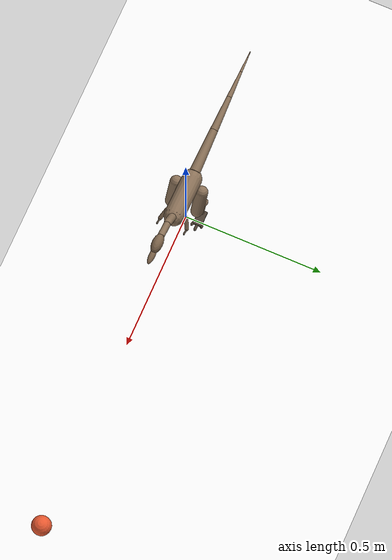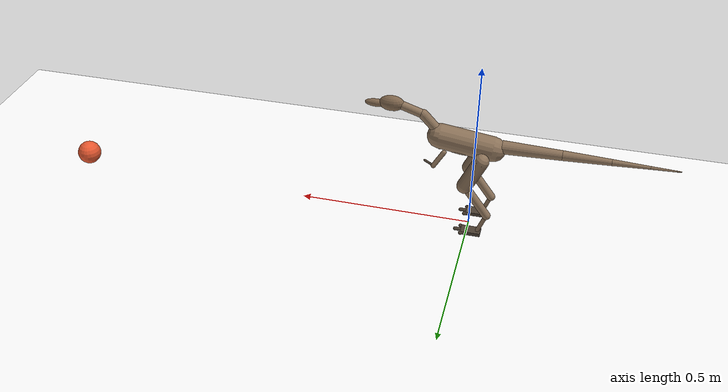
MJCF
<?xml version='1.0' encoding='utf-8'?>
<mujoco model="compsognathus_biological_v2">
  <compiler angle="radian" autolimits="true" />
  <option timestep="0.002" gravity="0 0 -9.81" integrator="implicitfast" iterations="100" cone="elliptic" />
  <default>
    <joint damping="0.01" armature="0.00005" limited="true" />
    <geom contype="1" conaffinity="3" friction="0.8 0.005 0.0001" condim="3" solref="0.006 1" solimp="0.95 0.99 0.001" margin=".00005" material="body_mat" />
  </default>
  <asset>
    <texture type="skybox" builtin="gradient" rgb1=".12 .18 .23" rgb2=".25 .34 .40" width="128" height="128" />
    <texture name="ground_grid" type="2d" builtin="checker" rgb1="0.15 0.19 0.23" rgb2="0.19 0.23 0.27" width="256" height="256" />
    <material name="ground_mat" texture="ground_grid" texrepeat="10 10" texuniform="true" />
    <material name="body_mat" rgba=".55 .45 .35 1" specular=".15" shininess=".12" />
    <material name="belly_mat" rgba=".60 .50 .40 1" specular=".15" shininess=".12" />
    <material name="head_mat" rgba=".50 .40 .30 1" specular=".15" shininess=".12" />
    <material name="claw_mat" rgba=".30 .25 .20 1" specular=".15" shininess=".12" />
    <material name="tooth_mat" rgba=".90 .88 .80 1" specular=".15" shininess=".12" />
    <material name="eye_mat" rgba=".035 .03 .025 1" specular=".15" shininess=".12" />
    <material name="frame_mat" rgba=".35 .38 .40 1" specular=".15" shininess=".12" />
    <material name="servo_mat" rgba=".13 .15 .17 1" specular=".15" shininess=".12" />
    <material name="electronics_mat" rgba=".12 .30 .23 1" specular=".15" shininess=".12" />
    <material name="lens_mat" rgba=".06 .13 .19 1" specular=".15" shininess=".12" />
    <material name="sole_mat" rgba=".16 .17 .18 1" specular=".15" shininess=".12" />
    <mesh name="tail_1_taper" vertex="0.012 0.019 0 0.012 0.0180700738096 0.00587132289312 0.012 0.0153713228931 0.0111679197936 0.012 0.0111679197936 0.0153713228931 0.012 0.00587132289312 0.0180700738096 0.012 1.16341445919e-18 0.019 0.012 -0.00587132289312 0.0180700738096 0.012 -0.0111679197936 0.0153713228931 0.012 -0.0153713228931 0.0111679197936 0.012 -0.0180700738096 0.00587132289312 0.012 -0.019 2.32682891838e-18 0.012 -0.0180700738096 -0.00587132289312 0.012 -0.0153713228931 -0.0111679197936 0.012 -0.0111679197936 -0.0153713228931 0.012 -0.00587132289312 -0.0180700738096 0.012 -3.49024337757e-18 -0.019 0.012 0.00587132289312 -0.0180700738096 0.012 0.0111679197936 -0.0153713228931 0.012 0.0153713228931 -0.0111679197936 0.012 0.0180700738096 -0.00587132289312 -0.15 0.014 0 -0.15 0.0133147912281 0.00432623792125 -0.15 0.0113262379212 0.00822899353209 -0.15 0.00822899353209 0.0113262379212 -0.15 0.00432623792125 0.0133147912281 -0.15 8.57252759403e-19 0.014 -0.15 -0.00432623792125 0.0133147912281 -0.15 -0.00822899353209 0.0113262379212 -0.15 -0.0113262379212 0.00822899353209 -0.15 -0.0133147912281 0.00432623792125 -0.15 -0.014 1.71450551881e-18 -0.15 -0.0133147912281 -0.00432623792125 -0.15 -0.0113262379212 -0.00822899353209 -0.15 -0.00822899353209 -0.0113262379212 -0.15 -0.00432623792125 -0.0133147912281 -0.15 -2.57175827821e-18 -0.014 -0.15 0.00432623792125 -0.0133147912281 -0.15 0.00822899353209 -0.0113262379212 -0.15 0.0113262379212 -0.00822899353209 -0.15 0.0133147912281 -0.00432623792125" face="0 21 1 0 20 21 1 22 2 1 21 22 2 23 3 2 22 23 3 24 4 3 23 24 4 25 5 4 24 25 5 26 6 5 25 26 6 27 7 6 26 27 7 28 8 7 27 28 8 29 9 8 28 29 9 30 10 9 29 30 10 31 11 10 30 31 11 32 12 11 31 32 12 33 13 12 32 33 13 34 14 13 33 34 14 35 15 14 34 35 15 36 16 15 35 36 16 37 17 16 36 37 17 38 18 17 37 38 18 39 19 18 38 39 19 20 0 19 39 20 0 1 2 20 22 21 0 2 3 20 23 22 0 3 4 20 24 23 0 4 5 20 25 24 0 5 6 20 26 25 0 6 7 20 27 26 0 7 8 20 28 27 0 8 9 20 29 28 0 9 10 20 30 29 0 10 11 20 31 30 0 11 12 20 32 31 0 12 13 20 33 32 0 13 14 20 34 33 0 14 15 20 35 34 0 15 16 20 36 35 0 16 17 20 37 36 0 17 18 20 38 37 0 18 19 20 39 38" />
    <mesh name="tail_2_taper" vertex="0 0.014 0 0 0.0133147912281 0.00432623792125 0 0.0113262379212 0.00822899353209 0 0.00822899353209 0.0113262379212 0 0.00432623792125 0.0133147912281 0 8.57252759403e-19 0.014 0 -0.00432623792125 0.0133147912281 0 -0.00822899353209 0.0113262379212 0 -0.0113262379212 0.00822899353209 0 -0.0133147912281 0.00432623792125 0 -0.014 1.71450551881e-18 0 -0.0133147912281 -0.00432623792125 0 -0.0113262379212 -0.00822899353209 0 -0.00822899353209 -0.0113262379212 0 -0.00432623792125 -0.0133147912281 0 -2.57175827821e-18 -0.014 0 0.00432623792125 -0.0133147912281 0 0.00822899353209 -0.0113262379212 0 0.0113262379212 -0.00822899353209 0 0.0133147912281 -0.00432623792125 -0.13 0.009 0 -0.13 0.00855950864666 0.00278115294937 -0.13 0.00728115294937 0.00529006727063 -0.13 0.00529006727063 0.00728115294937 -0.13 0.00278115294937 0.00855950864666 -0.13 5.51091059616e-19 0.009 -0.13 -0.00278115294937 0.00855950864666 -0.13 -0.00529006727063 0.00728115294937 -0.13 -0.00728115294937 0.00529006727063 -0.13 -0.00855950864666 0.00278115294937 -0.13 -0.009 1.10218211923e-18 -0.13 -0.00855950864666 -0.00278115294937 -0.13 -0.00728115294937 -0.00529006727063 -0.13 -0.00529006727063 -0.00728115294937 -0.13 -0.00278115294937 -0.00855950864666 -0.13 -1.65327317885e-18 -0.009 -0.13 0.00278115294937 -0.00855950864666 -0.13 0.00529006727063 -0.00728115294937 -0.13 0.00728115294937 -0.00529006727063 -0.13 0.00855950864666 -0.00278115294937" face="0 21 1 0 20 21 1 22 2 1 21 22 2 23 3 2 22 23 3 24 4 3 23 24 4 25 5 4 24 25 5 26 6 5 25 26 6 27 7 6 26 27 7 28 8 7 27 28 8 29 9 8 28 29 9 30 10 9 29 30 10 31 11 10 30 31 11 32 12 11 31 32 12 33 13 12 32 33 13 34 14 13 33 34 14 35 15 14 34 35 15 36 16 15 35 36 16 37 17 16 36 37 17 38 18 17 37 38 18 39 19 18 38 39 19 20 0 19 39 20 0 1 2 20 22 21 0 2 3 20 23 22 0 3 4 20 24 23 0 4 5 20 25 24 0 5 6 20 26 25 0 6 7 20 27 26 0 7 8 20 28 27 0 8 9 20 29 28 0 9 10 20 30 29 0 10 11 20 31 30 0 11 12 20 32 31 0 12 13 20 33 32 0 13 14 20 34 33 0 14 15 20 35 34 0 15 16 20 36 35 0 16 17 20 37 36 0 17 18 20 38 37 0 18 19 20 39 38" />
    <mesh name="tail_3_taper" vertex="0 0.009 0 0 0.00855950864666 0.00278115294937 0 0.00728115294937 0.00529006727063 0 0.00529006727063 0.00728115294937 0 0.00278115294937 0.00855950864666 0 5.51091059616e-19 0.009 0 -0.00278115294937 0.00855950864666 0 -0.00529006727063 0.00728115294937 0 -0.00728115294937 0.00529006727063 0 -0.00855950864666 0.00278115294937 0 -0.009 1.10218211923e-18 0 -0.00855950864666 -0.00278115294937 0 -0.00728115294937 -0.00529006727063 0 -0.00529006727063 -0.00728115294937 0 -0.00278115294937 -0.00855950864666 0 -1.65327317885e-18 -0.009 0 0.00278115294937 -0.00855950864666 0 0.00529006727063 -0.00728115294937 0 0.00728115294937 -0.00529006727063 0 0.00855950864666 -0.00278115294937 -0.1 0.0045 0 -0.1 0.00427975432333 0.00139057647469 -0.1 0.00364057647469 0.00264503363532 -0.1 0.00264503363532 0.00364057647469 -0.1 0.00139057647469 0.00427975432333 -0.1 2.75545529808e-19 0.0045 -0.1 -0.00139057647469 0.00427975432333 -0.1 -0.00264503363532 0.00364057647469 -0.1 -0.00364057647469 0.00264503363532 -0.1 -0.00427975432333 0.00139057647469 -0.1 -0.0045 5.51091059616e-19 -0.1 -0.00427975432333 -0.00139057647469 -0.1 -0.00364057647469 -0.00264503363532 -0.1 -0.00264503363532 -0.00364057647469 -0.1 -0.00139057647469 -0.00427975432333 -0.1 -8.26636589424e-19 -0.0045 -0.1 0.00139057647469 -0.00427975432333 -0.1 0.00264503363532 -0.00364057647469 -0.1 0.00364057647469 -0.00264503363532 -0.1 0.00427975432333 -0.00139057647469" face="0 21 1 0 20 21 1 22 2 1 21 22 2 23 3 2 22 23 3 24 4 3 23 24 4 25 5 4 24 25 5 26 6 5 25 26 6 27 7 6 26 27 7 28 8 7 27 28 8 29 9 8 28 29 9 30 10 9 29 30 10 31 11 10 30 31 11 32 12 11 31 32 12 33 13 12 32 33 13 34 14 13 33 34 14 35 15 14 34 35 15 36 16 15 35 36 16 37 17 16 36 37 17 38 18 17 37 38 18 39 19 18 38 39 19 20 0 19 39 20 0 1 2 20 22 21 0 2 3 20 23 22 0 3 4 20 24 23 0 4 5 20 25 24 0 5 6 20 26 25 0 6 7 20 27 26 0 7 8 20 28 27 0 8 9 20 29 28 0 9 10 20 30 29 0 10 11 20 31 30 0 11 12 20 32 31 0 12 13 20 33 32 0 13 14 20 34 33 0 14 15 20 35 34 0 15 16 20 36 35 0 16 17 20 37 36 0 17 18 20 38 37 0 18 19 20 39 38" />
    <mesh name="tail_4_taper" vertex="0 0.0045 0 0 0.00427975432333 0.00139057647469 0 0.00364057647469 0.00264503363532 0 0.00264503363532 0.00364057647469 0 0.00139057647469 0.00427975432333 0 2.75545529808e-19 0.0045 0 -0.00139057647469 0.00427975432333 0 -0.00264503363532 0.00364057647469 0 -0.00364057647469 0.00264503363532 0 -0.00427975432333 0.00139057647469 0 -0.0045 5.51091059616e-19 0 -0.00427975432333 -0.00139057647469 0 -0.00364057647469 -0.00264503363532 0 -0.00264503363532 -0.00364057647469 0 -0.00139057647469 -0.00427975432333 0 -8.26636589424e-19 -0.0045 0 0.00139057647469 -0.00427975432333 0 0.00264503363532 -0.00364057647469 0 0.00364057647469 -0.00264503363532 0 0.00427975432333 -0.00139057647469 -0.08 0.0015 0 -0.08 0.00142658477444 0.000463525491562 -0.08 0.00121352549156 0.000881677878439 -0.08 0.000881677878439 0.00121352549156 -0.08 0.000463525491562 0.00142658477444 -0.08 9.18485099361e-20 0.0015 -0.08 -0.000463525491562 0.00142658477444 -0.08 -0.000881677878439 0.00121352549156 -0.08 -0.00121352549156 0.000881677878439 -0.08 -0.00142658477444 0.000463525491562 -0.08 -0.0015 1.83697019872e-19 -0.08 -0.00142658477444 -0.000463525491562 -0.08 -0.00121352549156 -0.000881677878439 -0.08 -0.000881677878439 -0.00121352549156 -0.08 -0.000463525491562 -0.00142658477444 -0.08 -2.75545529808e-19 -0.0015 -0.08 0.000463525491562 -0.00142658477444 -0.08 0.000881677878439 -0.00121352549156 -0.08 0.00121352549156 -0.000881677878439 -0.08 0.00142658477444 -0.000463525491562" face="0 21 1 0 20 21 1 22 2 1 21 22 2 23 3 2 22 23 3 24 4 3 23 24 4 25 5 4 24 25 5 26 6 5 25 26 6 27 7 6 26 27 7 28 8 7 27 28 8 29 9 8 28 29 9 30 10 9 29 30 10 31 11 10 30 31 11 32 12 11 31 32 12 33 13 12 32 33 13 34 14 13 33 34 14 35 15 14 34 35 15 36 16 15 35 36 16 37 17 16 36 37 17 38 18 17 37 38 18 39 19 18 38 39 19 20 0 19 39 20 0 1 2 20 22 21 0 2 3 20 23 22 0 3 4 20 24 23 0 4 5 20 25 24 0 5 6 20 26 25 0 6 7 20 27 26 0 7 8 20 28 27 0 8 9 20 29 28 0 9 10 20 30 29 0 10 11 20 31 30 0 11 12 20 32 31 0 12 13 20 33 32 0 13 14 20 34 33 0 14 15 20 35 34 0 15 16 20 36 35 0 16 17 20 37 36 0 17 18 20 38 37 0 18 19 20 39 38" />
  </asset>
  <worldbody>
    <geom name="floor" type="plane" size="3 3 0.05" contype="2" conaffinity="1" friction="0.8 0.005 0.0001" material="ground_mat" rgba="1 1 1 1" condim="3" />
    <light name="key_light" pos="0.5 -0.8 1.5" dir="-0.3 0.4 -1" directional="true" />
    <light name="fill_light" pos="-1 0.5 1" dir="0.5 -0.3 -1" diffuse="0.4 0.4 0.4" />
    <body name="prey" mocap="true" pos="1.2 0 0.04">
      <geom name="prey_geom" type="sphere" size="0.035" mass="0.001" contype="0" conaffinity="0" rgba="0.92 0.35 0.19 1" />
    </body>
    <body name="pelvis" pos="0 0 0.244391440454">
      <freejoint name="root" />
      <geom name="torso" type="capsule" size=".035" mass="0.33" material="body_mat" fromto="-.050 0 .015 .100 0 .035" />
      <body name="neck" pos=".105 0 .05">
        <joint name="neck_pitch" axis="0 1 0" range="-0.55 0.55" />
        <geom name="neck_geom" type="capsule" fromto="0 0 0 .043 0 .046" size=".014" mass=".025" material="body_mat" />
        <body name="skull" pos=".13 0 .065">
          <geom name="skull_geom" type="ellipsoid" pos=".002 0 .003" size=".036 .019 .022" mass=".030" material="head_mat" />
          <body name="jaw" pos="-.015 0 -.012">
            <joint name="jaw_pitch" axis="0 1 0" range="-0.04 0.6" />
            <geom name="jaw_geom" type="ellipsoid" size=".040 .009 .006" mass=".007" material="head_mat" pos=".045 0 .008" />
            <inertial mass="0.007" pos="0.0395 0 0" quat="0.707106781187 0 -0.707106781187 0" diaginertia="4.33369455253e-06 4.33369455253e-06 8.61381322957e-08" />
          </body>
          <site name="head_tip" pos="0.078 0 -0.002" size="0.003" group="4" />
          <camera name="head_camera" pos="0.08 0 0.002" xyaxes="0 -1 0 0 0 1" fovy="70" resolution="640 480" />
          <geom name="muzzle_geom" type="ellipsoid" pos=".045 0 -.002" size=".033 .011 .011" mass=".015" material="head_mat" />
        </body>
        <geom name="upper_neck_geom" type="capsule" fromto=".043 0 .046 .102 0 .065" size=".012" mass=".015" material="body_mat" />
      </body>
      <body name="r_arm" pos="0.08 -0.035 0.005">
        <geom name="arm_geom_-1" type="capsule" fromto="0 0 0 0.025 -0.014 -0.038" size=".007" mass=".008" material="body_mat" />
        <geom name="hand_visual_-1" type="capsule" fromto="0.025 -0.014 -0.038 0.05 -0.014 -0.024" size=".003" mass="0" contype="0" conaffinity="0" material="claw_mat" />
      </body>
      <body name="l_arm" pos="0.08 0.035 0.005">
        <geom name="arm_geom_1" type="capsule" fromto="0 0 0 0.025 0.014 -0.038" size=".007" mass=".008" material="body_mat" />
        <geom name="hand_visual_1" type="capsule" fromto="0.025 0.014 -0.038 0.05 0.014 -0.024" size=".003" mass="0" contype="0" conaffinity="0" material="claw_mat" />
      </body>
      <body name="tail_1" pos="-.085 0 .026">
        <joint name="tail_1_pitch" axis="0 1 0" range="-0.35 0.35" />
        <joint name="tail_1_yaw" axis="0 0 1" range="-0.45 0.45" />
        <geom name="tail_1_geom" type="mesh" mass="0.1173" material="body_mat" mesh="tail_1_taper" />
        <body name="tail_2" pos="-0.15 0 0">
          <joint name="tail_2_pitch" axis="0 1 0" range="-.2 .2" stiffness="1.5" damping=".08" />
          <geom name="tail_2_geom" type="mesh" mass="0.0461" material="body_mat" mesh="tail_2_taper" />
          <body name="tail_3" pos="-0.13 0 0">
            <joint name="tail_3_pitch" axis="0 1 0" range="-.2 .2" stiffness="1.5" damping=".08" />
            <geom name="tail_3_geom" type="mesh" mass="0.0125" material="body_mat" mesh="tail_3_taper" />
            <body name="tail_4" pos="-0.1 0 0">
              <joint name="tail_4_pitch" axis="0 1 0" range="-.2 .2" stiffness="1.5" damping=".08" />
              <geom name="tail_4_geom" type="mesh" mass="0.0021" material="body_mat" mesh="tail_4_taper" />
              <site name="tail_tip" pos="-0.08 0 0" size=".003" group="4" />
            </body>
          </body>
        </body>
      </body>
      <body name="r_thigh" pos="-0.025 -0.047 0">
        <joint name="r_hip_pitch" axis="0 1 0" range="-0.6 0.7" />
        <joint name="r_hip_roll" axis="1 0 0" range="-0.35 0.35" />
        <geom name="r_thigh_geom" type="capsule" fromto="0 0 0 0.04 0 -0.0861684396981" size=".022" mass=".078" material="body_mat" />
        <body name="r_tibia" pos="0.04 0 -0.0861684396981">
          <joint name="r_knee" axis="0 1 0" range="-0.5 1" />
          <geom name="r_tibia_geom" type="capsule" fromto="0 0 0 -0.068 0 -0.0914986338696" size=".012" mass=".056" material="body_mat" />
          <body name="r_metatarsus" pos="-0.068 0 -0.0914986338696">
            <joint name="r_ankle" axis="0 1 0" range="-0.65 0.65" />
            <geom name="r_metatarsus_geom" type="capsule" fromto="0 0 0 0.0215625 0 -0.0559915939561" size=".006" mass=".018" material="body_mat" />
            <body name="r_foot" pos="0.023 0 -0.0597243668866">
              <joint name="r_toe" axis="0 1 0" range="-0.4 0.5" armature="0.0002" />
              <geom name="r_plantar_pad" type="box" pos=".017 0 -.002" size=".028 .016 .005" mass=".008" material="claw_mat" />
              <geom name="r_toe_d2_geom" type="capsule" fromto="0 0 -0.002 0.049 0.017 -0.002" size=".005" mass=".004" material="claw_mat" />
              <geom name="r_toe_d3_geom" type="capsule" fromto="0 0 -0.002 0.062 0 -0.002" size=".005" mass=".004" material="claw_mat" />
              <geom name="r_toe_d4_geom" type="capsule" fromto="0 0 -0.002 0.045 -0.017 -0.002" size=".005" mass=".004" material="claw_mat" />
              <site name="r_sole" pos=".017 0 -.007" size=".002" group="4" />
              <site name="r_foot_touch_volume" type="box" pos=".027 0 -.002" size=".045 .03 .007" group="4" />
            </body>
          </body>
        </body>
      </body>
      <body name="l_thigh" pos="-0.025 0.047 0">
        <joint name="l_hip_pitch" axis="0 1 0" range="-0.6 0.7" />
        <joint name="l_hip_roll" axis="1 0 0" range="-0.35 0.35" />
        <geom name="l_thigh_geom" type="capsule" fromto="0 0 0 0.04 0 -0.0861684396981" size=".022" mass=".078" material="body_mat" />
        <body name="l_tibia" pos="0.04 0 -0.0861684396981">
          <joint name="l_knee" axis="0 1 0" range="-0.5 1" />
          <geom name="l_tibia_geom" type="capsule" fromto="0 0 0 -0.068 0 -0.0914986338696" size=".012" mass=".056" material="body_mat" />
          <body name="l_metatarsus" pos="-0.068 0 -0.0914986338696">
            <joint name="l_ankle" axis="0 1 0" range="-0.65 0.65" />
            <geom name="l_metatarsus_geom" type="capsule" fromto="0 0 0 0.0215625 0 -0.0559915939561" size=".006" mass=".018" material="body_mat" />
            <body name="l_foot" pos="0.023 0 -0.0597243668866">
              <joint name="l_toe" axis="0 1 0" range="-0.4 0.5" armature="0.0002" />
              <geom name="l_plantar_pad" type="box" pos=".017 0 -.002" size=".028 .016 .005" mass=".008" material="claw_mat" />
              <geom name="l_toe_d2_geom" type="capsule" fromto="0 0 -0.002 0.049 -0.017 -0.002" size=".005" mass=".004" material="claw_mat" />
              <geom name="l_toe_d3_geom" type="capsule" fromto="0 0 -0.002 0.062 0 -0.002" size=".005" mass=".004" material="claw_mat" />
              <geom name="l_toe_d4_geom" type="capsule" fromto="0 0 -0.002 0.045 0.017 -0.002" size=".005" mass=".004" material="claw_mat" />
              <site name="l_sole" pos=".017 0 -.007" size=".002" group="4" />
              <site name="l_foot_touch_volume" type="box" pos=".027 0 -.002" size=".045 .03 .007" group="4" />
            </body>
          </body>
        </body>
      </body>
      <site name="imu" pos="0 0 0.025" size="0.003" group="4" />
      <geom name="belly_geom" type="ellipsoid" pos=".025 0 .012" size=".07 .029 .023" mass=".04" material="belly_mat" />
    </body>
  </worldbody>
  <visual>
    <global offwidth="1440" offheight="1000" />
    <quality shadowsize="2048" />
    <headlight diffuse="0.65 0.65 0.65" ambient="0.35 0.35 0.35" />
  </visual>
  <statistic center="0 0 0.2" extent="0.9" />
  <actuator>
    <position name="neck_pitch_act" joint="neck_pitch" kp="8" kv="0.12" ctrlrange="-0.55 0.55" forcerange="-0.4 0.4" />
    <position name="jaw_pitch_act" joint="jaw_pitch" kp="0.3" kv="0.01" ctrlrange="-0.04 0.6" forcerange="-0.04 0.04" />
    <position name="tail_1_pitch_act" joint="tail_1_pitch" kp="10" kv="0.16" ctrlrange="-0.35 0.35" forcerange="-0.7 0.7" />
    <position name="tail_1_yaw_act" joint="tail_1_yaw" kp="8" kv="0.12" ctrlrange="-0.45 0.45" forcerange="-0.5 0.5" />
    <position name="r_hip_pitch_act" joint="r_hip_pitch" kp="20" kv="0.2" ctrlrange="-0.6 0.7" forcerange="-1 1" />
    <position name="r_hip_roll_act" joint="r_hip_roll" kp="20" kv="0.2" ctrlrange="-0.35 0.35" forcerange="-1 1" />
    <position name="r_knee_act" joint="r_knee" kp="20" kv="0.2" ctrlrange="-0.5 1" forcerange="-1 1" />
    <position name="r_ankle_act" joint="r_ankle" kp="16" kv="0.2" ctrlrange="-0.65 0.65" forcerange="-0.8 0.8" />
    <position name="r_toe_act" joint="r_toe" kp="12" kv="0.2" ctrlrange="-0.4 0.5" forcerange="-0.6 0.6" />
    <position name="l_hip_pitch_act" joint="l_hip_pitch" kp="20" kv="0.2" ctrlrange="-0.6 0.7" forcerange="-1 1" />
    <position name="l_hip_roll_act" joint="l_hip_roll" kp="20" kv="0.2" ctrlrange="-0.35 0.35" forcerange="-1 1" />
    <position name="l_knee_act" joint="l_knee" kp="20" kv="0.2" ctrlrange="-0.5 1" forcerange="-1 1" />
    <position name="l_ankle_act" joint="l_ankle" kp="16" kv="0.2" ctrlrange="-0.65 0.65" forcerange="-0.8 0.8" />
    <position name="l_toe_act" joint="l_toe" kp="12" kv="0.2" ctrlrange="-0.4 0.5" forcerange="-0.6 0.6" />
  </actuator>
  <sensor>
    <gyro name="pelvis_gyro" site="imu" />
    <accelerometer name="pelvis_accel" site="imu" />
    <framequat name="diagnostic_pelvis_quat" objtype="xbody" objname="pelvis" />
    <touch name="r_foot_touch" site="r_foot_touch_volume" />
    <touch name="l_foot_touch" site="l_foot_touch_volume" />
    <framelinvel name="diagnostic_pelvis_velocity" objtype="xbody" objname="pelvis" />
    <jointpos name="neck_pitch_position" joint="neck_pitch" />
    <jointvel name="neck_pitch_velocity" joint="neck_pitch" />
    <jointpos name="jaw_pitch_position" joint="jaw_pitch" />
    <jointvel name="jaw_pitch_velocity" joint="jaw_pitch" />
    <jointpos name="tail_1_pitch_position" joint="tail_1_pitch" />
    <jointvel name="tail_1_pitch_velocity" joint="tail_1_pitch" />
    <jointpos name="tail_1_yaw_position" joint="tail_1_yaw" />
    <jointvel name="tail_1_yaw_velocity" joint="tail_1_yaw" />
    <jointpos name="tail_2_pitch_position" joint="tail_2_pitch" />
    <jointvel name="tail_2_pitch_velocity" joint="tail_2_pitch" />
    <jointpos name="tail_3_pitch_position" joint="tail_3_pitch" />
    <jointvel name="tail_3_pitch_velocity" joint="tail_3_pitch" />
    <jointpos name="tail_4_pitch_position" joint="tail_4_pitch" />
    <jointvel name="tail_4_pitch_velocity" joint="tail_4_pitch" />
    <jointpos name="r_hip_pitch_position" joint="r_hip_pitch" />
    <jointvel name="r_hip_pitch_velocity" joint="r_hip_pitch" />
    <jointpos name="r_hip_roll_position" joint="r_hip_roll" />
    <jointvel name="r_hip_roll_velocity" joint="r_hip_roll" />
    <jointpos name="r_knee_position" joint="r_knee" />
    <jointvel name="r_knee_velocity" joint="r_knee" />
    <jointpos name="r_ankle_position" joint="r_ankle" />
    <jointvel name="r_ankle_velocity" joint="r_ankle" />
    <jointpos name="r_toe_position" joint="r_toe" />
    <jointvel name="r_toe_velocity" joint="r_toe" />
    <jointpos name="l_hip_pitch_position" joint="l_hip_pitch" />
    <jointvel name="l_hip_pitch_velocity" joint="l_hip_pitch" />
    <jointpos name="l_hip_roll_position" joint="l_hip_roll" />
    <jointvel name="l_hip_roll_velocity" joint="l_hip_roll" />
    <jointpos name="l_knee_position" joint="l_knee" />
    <jointvel name="l_knee_velocity" joint="l_knee" />
    <jointpos name="l_ankle_position" joint="l_ankle" />
    <jointvel name="l_ankle_velocity" joint="l_ankle" />
    <jointpos name="l_toe_position" joint="l_toe" />
    <jointvel name="l_toe_velocity" joint="l_toe" />
  </sensor>
  <keyframe>
    <key name="home" qpos="0 0 0.244391440454 1 0 0 0 0 0 0 0 0 0 0 0 0 0 0 0 0 0 0 0 0" ctrl="-0.011393701875 -0.00904155 0.0210644697468 0 0.00232473793831 8.95881707889e-06 -0.00487580206169 0.0119997924229 0.00713316932427 0.00232473793831 -8.95881707889e-06 -0.00487580206169 0.0119997924229 0.00713316932427" />
  </keyframe>
  <custom>
    <text name="sensor_contract" data="compso-sensors/v1: gyro+accel+joint-encoders+RGB; touch is ideal/optional; diagnostic_* is simulator-only" />
  </custom>
</mujoco>
